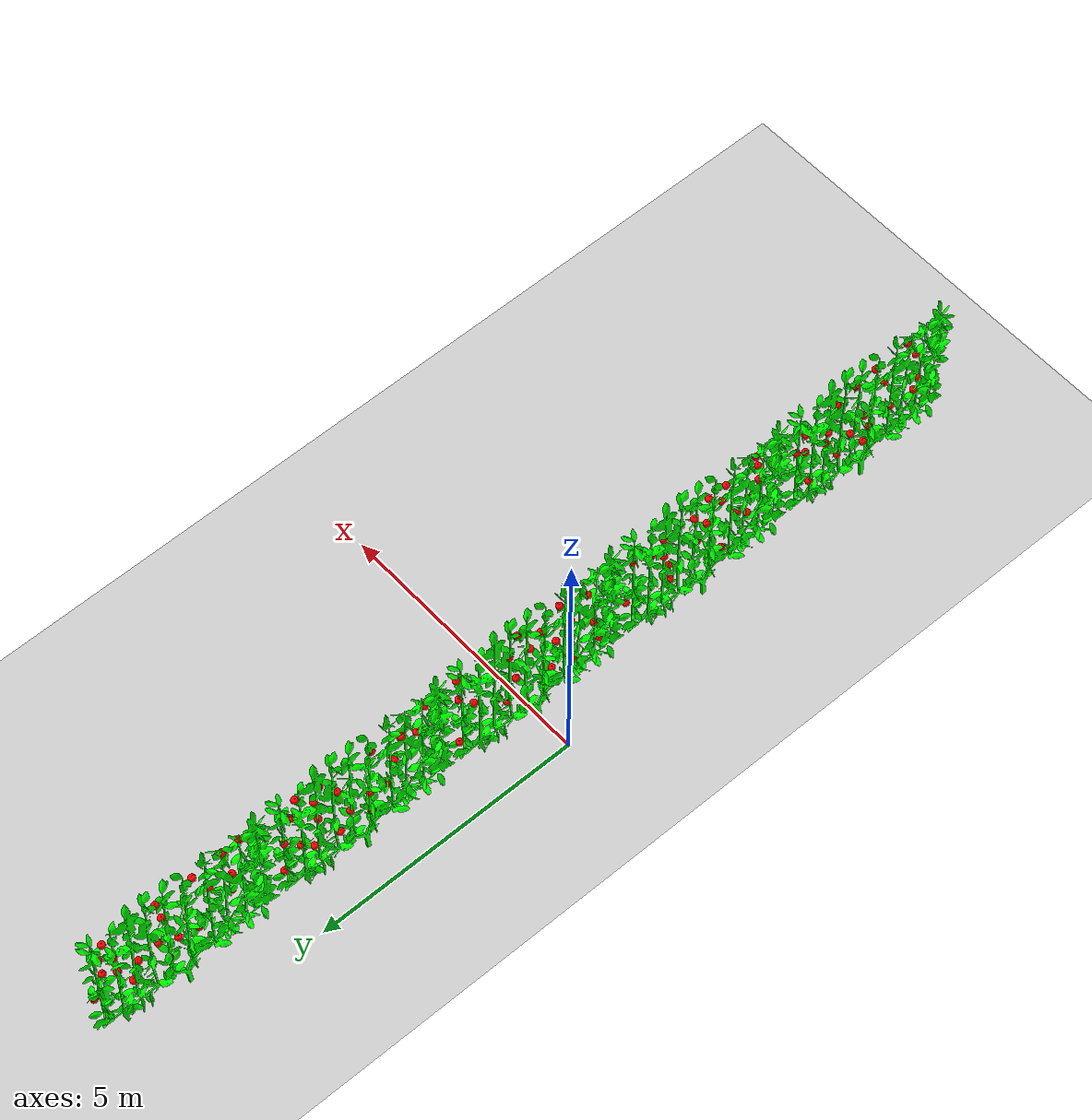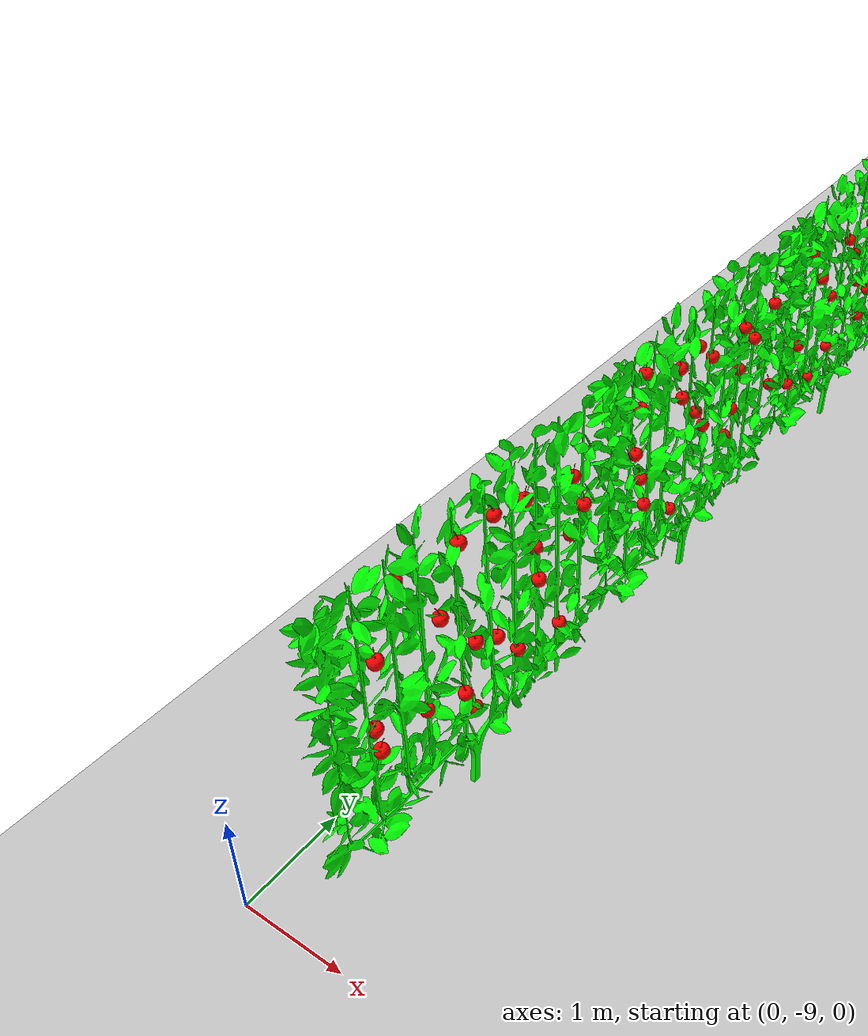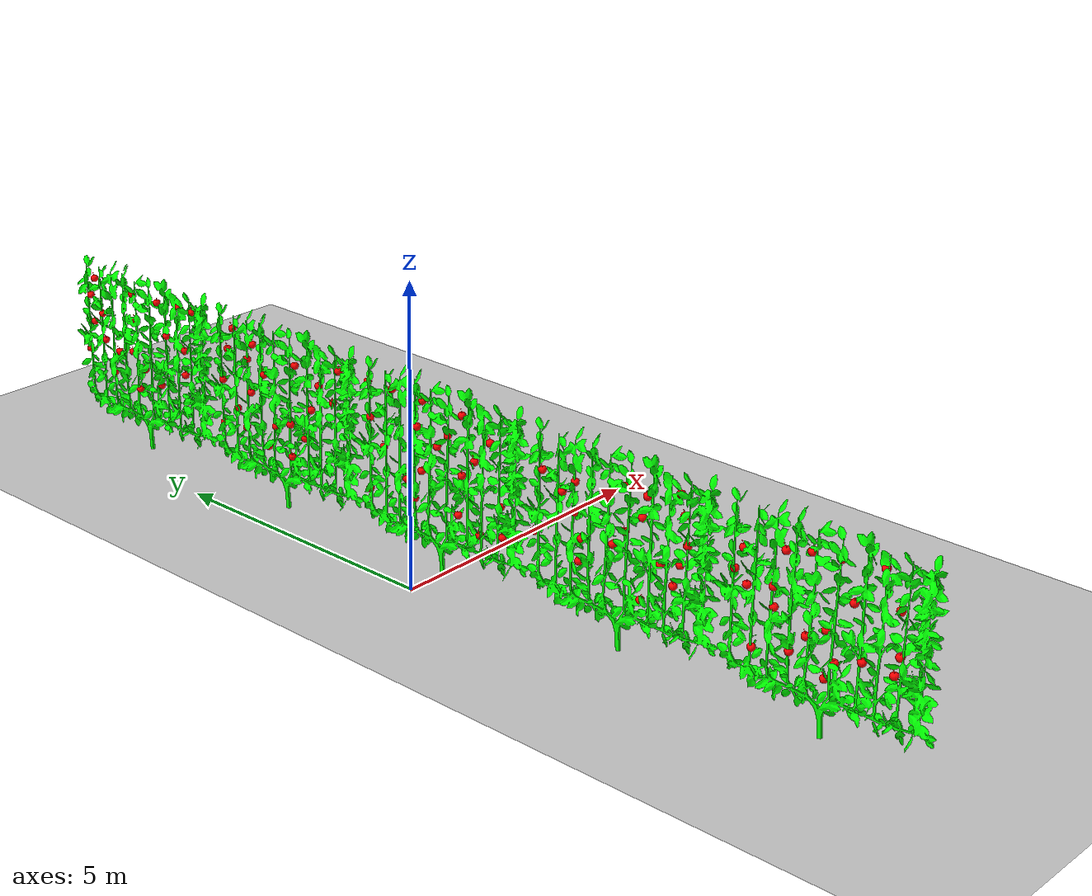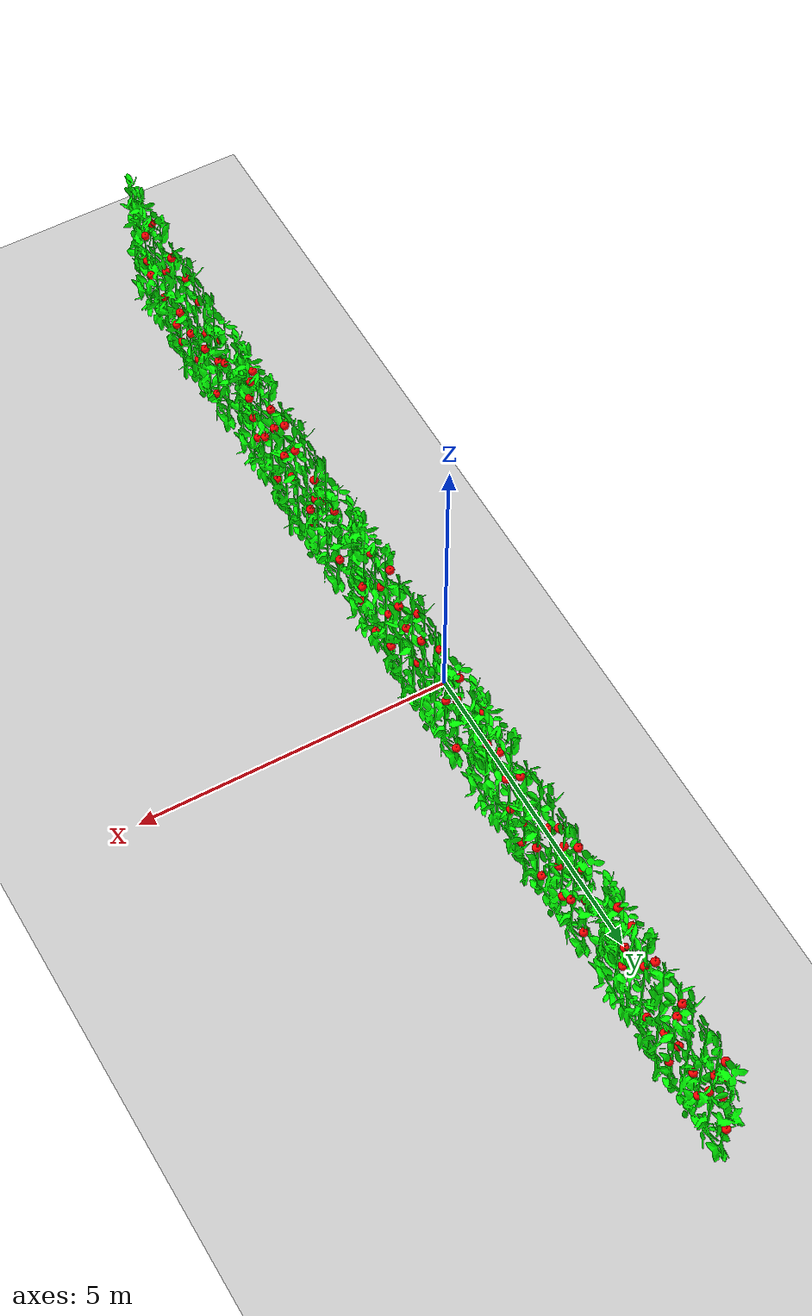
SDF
<?xml version="1.0" ?>
<sdf version="1.5">
  <world name="default">

    <!-- A global light source -->
    <include>
      <uri>model://sun</uri>
    </include>
    <!-- A ground plane -->
    <include>
      <uri>model://ground_plane</uri>
    </include>

    <include>
      <static>true</static>
      <pose>0.7 0 0 0 0 0</pose>
      <uri>model://plant_full1</uri>
    </include>

    <include>
      <static>true</static>
      <pose>0.7 3.5 0 0 0 0</pose>
      <uri>model://plant_full2</uri>
    </include>

    <include>
      <static>true</static>
      <pose>0.7 7 0 0 0 0</pose>
      <uri>model://plant_full3</uri>
    </include>

    <include>
      <static>true</static>
      <pose>0.7 -3.5 0 0 0 0</pose>
      <uri>model://plant_full4</uri>
    </include>

    <include>
      <static>true</static>
      <pose>0.7 -7 0 0 0 0</pose>
      <uri>model://plant_full5</uri>
    </include>
  </world>
</sdf>

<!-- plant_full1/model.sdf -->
<sdf version="1.5">
  <model name="plant_full1">

    <include>
      <name>p1</name>
      <pose>0.0 0 0 0 0 0</pose>
      <uri>model://plant</uri>
    </include>

<include>
<name>a1</name>
<pose>0 1.2958 1.868 0 0 1.825 </pose>
<uri>model://apple</uri>
</include>

<include>
<name>a2</name>
<pose>0 -0.39172 1.8942 0 0 2.5274 </pose>
<uri>model://apple</uri>
</include>

<include>
<name>a3</name>
<pose>0 -0.93213 2.6267 0 0 0.039576 </pose>
<uri>model://apple</uri>
</include>

<include>
<name>a4</name>
<pose>0 -1.1913 1.151 0 0 0.36069 </pose>
<uri>model://apple</uri>
</include>

<include>
<name>a5</name>
<pose>0 0.47493 2.8955 0 0 0.65698 </pose>
<uri>model://apple</uri>
</include>

<include>
<name>a6</name>
<pose>0 -0.73898 1.0118 0 0 1.8818 </pose>
<uri>model://apple</uri>
</include>

<include>
<name>a7</name>
<pose>0 1.6174 2.8728 0 0 2.3198 </pose>
<uri>model://apple</uri>
</include>

<include>
<name>a8</name>
<pose>0 -0.28112 1.2055 0 0 1.6225 </pose>
<uri>model://apple</uri>
</include>

<include>
<name>a9</name>
<pose>0 0.16785 2.2109 0 0 1.5389 </pose>
<uri>model://apple</uri>
</include>

<include>
<name>a10</name>
<pose>0 1.5819 2.2847 0 0 2.0789 </pose>
<uri>model://apple</uri>
</include>

<include>
<name>a11</name>
<pose>0 1.1111 2.8906 0 0 1.8148 </pose>
<uri>model://apple</uri>
</include>

<include>
<name>a12</name>
<pose>0 1.5855 1.0603 0 0 2.349 </pose>
<uri>model://apple</uri>
</include>

<include>
<name>a13</name>
<pose>0 0.42657 1.7208 0 0 2.9491 </pose>
<uri>model://apple</uri>
</include>

<include>
<name>a14</name>
<pose>0 -1.1412 1.6192 0 0 1.594 </pose>
<uri>model://apple</uri>
</include>

<include>
<name>a15</name>
<pose>0 -0.048192 2.4636 0 0 1.3448 </pose>
<uri>model://apple</uri>
</include>

<include>
<name>a16</name>
<pose>0 0.79027 1.4763 0 0 2.1781 </pose>
<uri>model://apple</uri>
</include>

<include>
<name>a17</name>
<pose>0 0.55502 2.4242 0 0 2.436 </pose>
<uri>model://apple</uri>
</include>

<include>
<name>a18</name>
<pose>0 -0.359 2.9015 0 0 0.10051 </pose>
<uri>model://apple</uri>
</include>

<include>
<name>a19</name>
<pose>0 -0.6035 2.215 0 0 0.44508 </pose>
<uri>model://apple</uri>
</include>

<include>
<name>a20</name>
<pose>0 0.64602 1.1927 0 0 1.4555 </pose>
<uri>model://apple</uri>
</include>

  </model>
</sdf>

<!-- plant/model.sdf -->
<sdf version="1.5">
  <model name="plant">
    <static>true</static>
    <link name="link">
      <pose>0 0 0 0 0 0</pose>
      <visual name="visual">
        <geometry>
          <mesh>
            <uri>model://plant/meshes/plant.stl</uri>
          </mesh>
        </geometry>
        <material>
          <ambient>0 1 0 1</ambient>
          <diffuse>0 1 0 1</diffuse>
          <specular>0.1 0.1 0.1 1</specular>
          <emissive>0 0 0 0</emissive>
        </material>
      </visual>
    </link>
  </model>
</sdf>

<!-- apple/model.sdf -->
<sdf version="1.5">
  <model name="apple">
    <static>true</static>
    <link name="link">
      <pose>0 0 0 0 0 0</pose>
      <visual name="visual">
        <geometry>
          <mesh>
            <uri>model://apple/meshes/apple.stl</uri>
            <scale>0.5 0.5 0.5</scale>
          </mesh>
        </geometry>
        <material>
          <ambient>1 0 0 1</ambient>
          <diffuse>1 0 0 1</diffuse>
          <specular>0.1 0.1 0.1 1</specular>
          <emissive>0 0 0 0</emissive>
        </material>
      </visual>
    </link>
  </model>
</sdf>

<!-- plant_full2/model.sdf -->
<sdf version="1.5">
  <model name="plant_full2">

    <include>
      <name>p1</name>
      <pose>0.0 0 0 0 0 0</pose>
      <uri>model://plant</uri>
    </include>

<include>
<name>a1</name>
<pose>0 -0.55614 2.0251 0 0 0.41455 </pose>
<uri>model://apple</uri>
</include>

<include>
<name>a2</name>
<pose>0 1.4407 2.5488 0 0 0.56629 </pose>
<uri>model://apple</uri>
</include>

<include>
<name>a3</name>
<pose>0 0.55364 2.3314 0 0 0.32343 </pose>
<uri>model://apple</uri>
</include>

<include>
<name>a4</name>
<pose>0 -0.19689 2.6722 0 0 1.875 </pose>
<uri>model://apple</uri>
</include>

<include>
<name>a5</name>
<pose>0 1.3072 2.9365 0 0 0.79701 </pose>
<uri>model://apple</uri>
</include>

<include>
<name>a6</name>
<pose>0 1.2275 1.5249 0 0 1.8183 </pose>
<uri>model://apple</uri>
</include>

<include>
<name>a7</name>
<pose>0 -1.2615 2.8683 0 0 2.8973 </pose>
<uri>model://apple</uri>
</include>

<include>
<name>a8</name>
<pose>0 0.89581 1.9069 0 0 1.3863 </pose>
<uri>model://apple</uri>
</include>

<include>
<name>a9</name>
<pose>0 0.24471 1.4832 0 0 2.9053 </pose>
<uri>model://apple</uri>
</include>

<include>
<name>a10</name>
<pose>0 -0.79508 2.4907 0 0 2.7559 </pose>
<uri>model://apple</uri>
</include>

<include>
<name>a11</name>
<pose>0 -0.052492 1.6266 0 0 0.38584 </pose>
<uri>model://apple</uri>
</include>

<include>
<name>a12</name>
<pose>0 -1.0719 2.2752 0 0 1.9021 </pose>
<uri>model://apple</uri>
</include>

<include>
<name>a13</name>
<pose>0 0.47793 1.06 0 0 1.9708 </pose>
<uri>model://apple</uri>
</include>

<include>
<name>a14</name>
<pose>0 0.96211 1.2551 0 0 2.9624 </pose>
<uri>model://apple</uri>
</include>

<include>
<name>a15</name>
<pose>0 1.5079 1.9566 0 0 3.0357 </pose>
<uri>model://apple</uri>
</include>

<include>
<name>a16</name>
<pose>0 -0.39149 1.479 0 0 0.52608 </pose>
<uri>model://apple</uri>
</include>

<include>
<name>a17</name>
<pose>0 0.90347 2.4821 0 0 2.8142 </pose>
<uri>model://apple</uri>
</include>

<include>
<name>a18</name>
<pose>0 0.78853 2.7725 0 0 2.3464 </pose>
<uri>model://apple</uri>
</include>

<include>
<name>a19</name>
<pose>0 1.6062 1.1695 0 0 1.0604 </pose>
<uri>model://apple</uri>
</include>

<include>
<name>a20</name>
<pose>0 -0.075814 1.0591 0 0 0.38149 </pose>
<uri>model://apple</uri>
</include>

  </model>
</sdf>

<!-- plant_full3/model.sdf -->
<sdf version="1.5">
  <model name="plant_full3">

    <include>
      <name>p1</name>
      <pose>0.0 0 0 0 0 0</pose>
      <uri>model://plant</uri>
    </include>

<include>
<name>a1</name>
<pose>0 1.1887 2.3177 0 0 2.623 </pose>
<uri>model://apple</uri>
</include>

<include>
<name>a2</name>
<pose>0 -0.88542 2.9565 0 0 2.5428 </pose>
<uri>model://apple</uri>
</include>

<include>
<name>a3</name>
<pose>0 0.40928 1.8073 0 0 2.5377 </pose>
<uri>model://apple</uri>
</include>

<include>
<name>a4</name>
<pose>0 1.6377 1.5531 0 0 2.029 </pose>
<uri>model://apple</uri>
</include>

<include>
<name>a5</name>
<pose>0 -0.32857 2.8975 0 0 2.8065 </pose>
<uri>model://apple</uri>
</include>

<include>
<name>a6</name>
<pose>0 0.40569 2.8809 0 0 1.2004 </pose>
<uri>model://apple</uri>
</include>

<include>
<name>a7</name>
<pose>0 0.30682 1.1414 0 0 1.3539 </pose>
<uri>model://apple</uri>
</include>

<include>
<name>a8</name>
<pose>0 -0.98701 1.7524 0 0 2.5388 </pose>
<uri>model://apple</uri>
</include>

<include>
<name>a9</name>
<pose>0 0.12296 1.5724 0 0 0.57658 </pose>
<uri>model://apple</uri>
</include>

<include>
<name>a10</name>
<pose>0 -1.1911 2.9495 0 0 1.7741 </pose>
<uri>model://apple</uri>
</include>

<include>
<name>a11</name>
<pose>0 -0.94653 2.2043 0 0 0.73371 </pose>
<uri>model://apple</uri>
</include>

<include>
<name>a12</name>
<pose>0 1.1955 1.8301 0 0 1.6218 </pose>
<uri>model://apple</uri>
</include>

<include>
<name>a13</name>
<pose>0 1.4095 2.9357 0 0 0.45372 </pose>
<uri>model://apple</uri>
</include>

<include>
<name>a14</name>
<pose>0 -0.5031 2.363 0 0 0.067002 </pose>
<uri>model://apple</uri>
</include>

<include>
<name>a15</name>
<pose>0 0.82778 1.7074 0 0 1.458 </pose>
<uri>model://apple</uri>
</include>

<include>
<name>a16</name>
<pose>0 -0.2816 1.3839 0 0 1.2239 </pose>
<uri>model://apple</uri>
</include>

<include>
<name>a17</name>
<pose>0 1.4174 2.1156 0 0 2.7271 </pose>
<uri>model://apple</uri>
</include>

<include>
<name>a18</name>
<pose>0 0.34141 2.4223 0 0 1.0017 </pose>
<uri>model://apple</uri>
</include>

<include>
<name>a19</name>
<pose>0 0.92281 1.2959 0 0 2.8471 </pose>
<uri>model://apple</uri>
</include>

<include>
<name>a20</name>
<pose>0 1.5235 2.6044 0 0 0.13949 </pose>
<uri>model://apple</uri>
</include>

  </model>
</sdf>

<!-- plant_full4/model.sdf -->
<sdf version="1.5">
  <model name="plant_full4">

    <include>
      <name>p1</name>
      <pose>0.0 0 0 0 0 0</pose>
      <uri>model://plant</uri>
    </include>

<include>
<name>a1</name>
<pose>0 1.1737 2.2696 0 0 1.3966 </pose>
<uri>model://apple</uri>
</include>

<include>
<name>a2</name>
<pose>0 0.32803 2.4702 0 0 0.48822 </pose>
<uri>model://apple</uri>
</include>

<include>
<name>a3</name>
<pose>0 0.78797 1.6343 0 0 1.5248 </pose>
<uri>model://apple</uri>
</include>

<include>
<name>a4</name>
<pose>0 -0.048306 2.7279 0 0 3.0164 </pose>
<uri>model://apple</uri>
</include>

<include>
<name>a5</name>
<pose>0 -1.1151 2.1662 0 0 1.5746 </pose>
<uri>model://apple</uri>
</include>

<include>
<name>a6</name>
<pose>0 -1.0383 2.6087 0 0 1.0816 </pose>
<uri>model://apple</uri>
</include>

<include>
<name>a7</name>
<pose>0 -0.018127 2.0204 0 0 1.8055 </pose>
<uri>model://apple</uri>
</include>

<include>
<name>a8</name>
<pose>0 0.8156 1.2879 0 0 0.081996 </pose>
<uri>model://apple</uri>
</include>

<include>
<name>a9</name>
<pose>0 1.5452 2.4957 0 0 1.7461 </pose>
<uri>model://apple</uri>
</include>

<include>
<name>a10</name>
<pose>0 -0.70148 1.7312 0 0 2.6493 </pose>
<uri>model://apple</uri>
</include>

<include>
<name>a11</name>
<pose>0 -0.39945 2.6888 0 0 1.9085 </pose>
<uri>model://apple</uri>
</include>

<include>
<name>a12</name>
<pose>0 -0.38818 1.0536 0 0 3.0288 </pose>
<uri>model://apple</uri>
</include>

<include>
<name>a13</name>
<pose>0 -1 1.8314 0 0 1.5537 </pose>
<uri>model://apple</uri>
</include>

<include>
<name>a14</name>
<pose>0 1.6762 1.4658 0 0 1.7316 </pose>
<uri>model://apple</uri>
</include>

<include>
<name>a15</name>
<pose>0 -0.33244 2.3367 0 0 2.1067 </pose>
<uri>model://apple</uri>
</include>

<include>
<name>a16</name>
<pose>0 0.1554 1.7521 0 0 2.699 </pose>
<uri>model://apple</uri>
</include>

<include>
<name>a17</name>
<pose>0 0.93974 2.0284 0 0 0.70357 </pose>
<uri>model://apple</uri>
</include>

<include>
<name>a18</name>
<pose>0 0.894 2.4995 0 0 2.4275 </pose>
<uri>model://apple</uri>
</include>

<include>
<name>a19</name>
<pose>0 -0.88387 1.4649 0 0 1.2513 </pose>
<uri>model://apple</uri>
</include>

<include>
<name>a20</name>
<pose>0 -0.95411 2.9235 0 0 0.69676 </pose>
<uri>model://apple</uri>
</include>

  </model>
</sdf>

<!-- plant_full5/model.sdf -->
<sdf version="1.5">
  <model name="plant_full5">

    <include>
      <name>p1</name>
      <pose>0.0 0 0 0 0 0</pose>
      <uri>model://plant</uri>
    </include>

<include>
<name>a1</name>
<pose>0 -1.0067 1.4737 0 0 0.22858 </pose>
<uri>model://apple</uri>
</include>

<include>
<name>a2</name>
<pose>0 0.90935 1.7583 0 0 1.5913 </pose>
<uri>model://apple</uri>
</include>

<include>
<name>a3</name>
<pose>0 -0.11327 2.8297 0 0 2.1641 </pose>
<uri>model://apple</uri>
</include>

<include>
<name>a4</name>
<pose>0 -0.74153 2.9345 0 0 0.7937 </pose>
<uri>model://apple</uri>
</include>

<include>
<name>a5</name>
<pose>0 1.5933 2.1196 0 0 1.0627 </pose>
<uri>model://apple</uri>
</include>

<include>
<name>a6</name>
<pose>0 0.029079 1.7239 0 0 2.3602 </pose>
<uri>model://apple</uri>
</include>

<include>
<name>a7</name>
<pose>0 0.63507 1.1923 0 0 1.0624 </pose>
<uri>model://apple</uri>
</include>

<include>
<name>a8</name>
<pose>0 1.3407 1.9372 0 0 2.2577 </pose>
<uri>model://apple</uri>
</include>

<include>
<name>a9</name>
<pose>0 -0.50421 1.4709 0 0 0.64684 </pose>
<uri>model://apple</uri>
</include>

<include>
<name>a10</name>
<pose>0 0.78467 2.6756 0 0 0.55793 </pose>
<uri>model://apple</uri>
</include>

<include>
<name>a11</name>
<pose>0 -0.11738 1.2824 0 0 2.096 </pose>
<uri>model://apple</uri>
</include>

<include>
<name>a12</name>
<pose>0 1.4605 2.4875 0 0 0.46351 </pose>
<uri>model://apple</uri>
</include>

<include>
<name>a13</name>
<pose>0 0.38757 1.5281 0 0 0.57799 </pose>
<uri>model://apple</uri>
</include>

<include>
<name>a14</name>
<pose>0 -0.36708 2.2735 0 0 2.4424 </pose>
<uri>model://apple</uri>
</include>

<include>
<name>a15</name>
<pose>0 1.2411 1.0231 0 0 1.1366 </pose>
<uri>model://apple</uri>
</include>

<include>
<name>a16</name>
<pose>0 0.051528 1.0009 0 0 0.9322 </pose>
<uri>model://apple</uri>
</include>

<include>
<name>a17</name>
<pose>0 0.30642 2.7921 0 0 2.9866 </pose>
<uri>model://apple</uri>
</include>

<include>
<name>a18</name>
<pose>0 0.93875 2.0847 0 0 0.18366 </pose>
<uri>model://apple</uri>
</include>

<include>
<name>a19</name>
<pose>0 -1.0169 2.4039 0 0 1.2598 </pose>
<uri>model://apple</uri>
</include>

<include>
<name>a20</name>
<pose>0 -1.1339 1.7612 0 0 2.9777 </pose>
<uri>model://apple</uri>
</include>

  </model>
</sdf>
